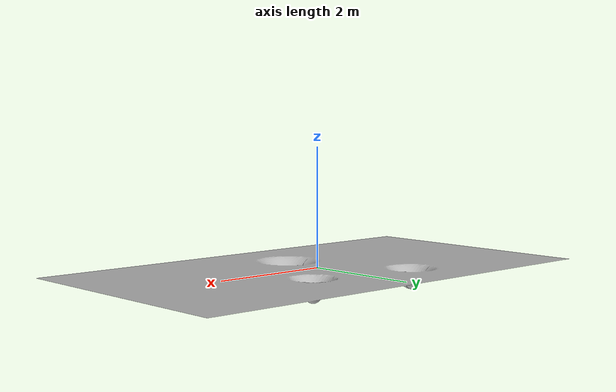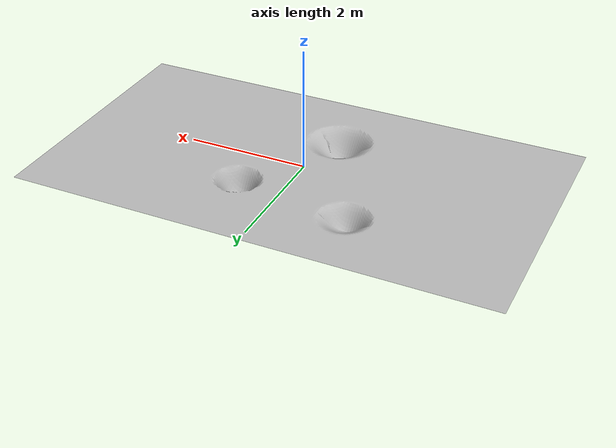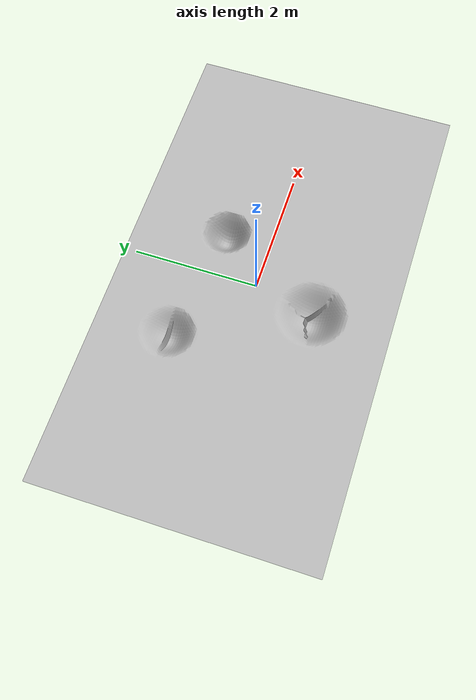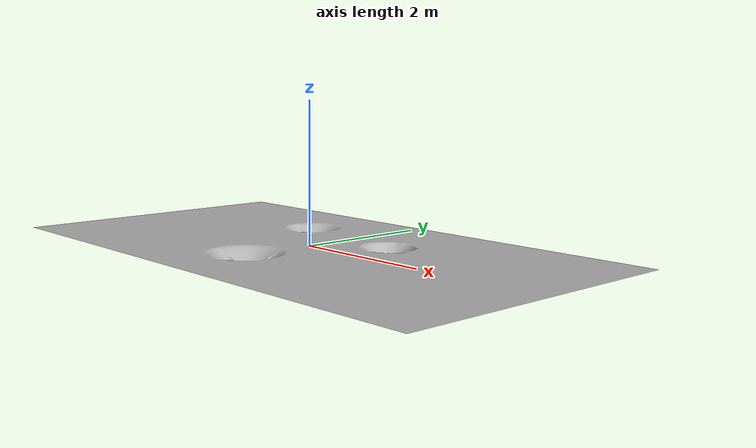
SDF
<?xml version="1.0" ?>
<sdf version="1.8">
  <model name="crater_terrain">
    <static>true</static>
    <link name="surface_link">
      <visual name="visual">
        <pose>0 0 0 0 0 0</pose>
        <geometry>
          <mesh>
            <uri>model://crater_terrain/meshes/crater_terrain.obj</uri>
            <scale>1 1 1</scale>
          </mesh>
        </geometry>
      </visual>
      <collision name="collision">
        <pose>0 0 0 0 0 0</pose>
        <geometry>
          <mesh>
            <uri>model://crater_terrain/meshes/crater_terrain.obj</uri>
            <scale>1 1 1</scale>
          </mesh>
        </geometry>
        <surface>
          <friction>
            <ode>
              <mu>0.8</mu>
              <mu2>0.8</mu2>
            </ode>
          </friction>
        </surface>
      </collision>
    </link>
  </model>
</sdf>
